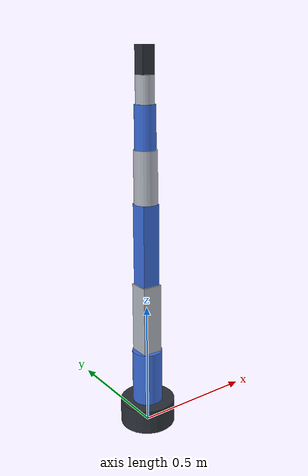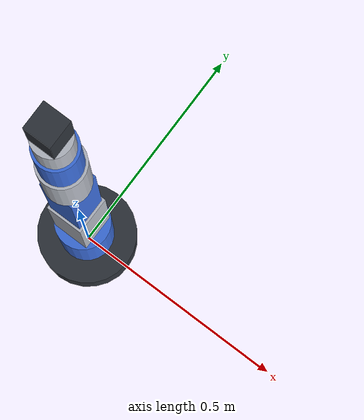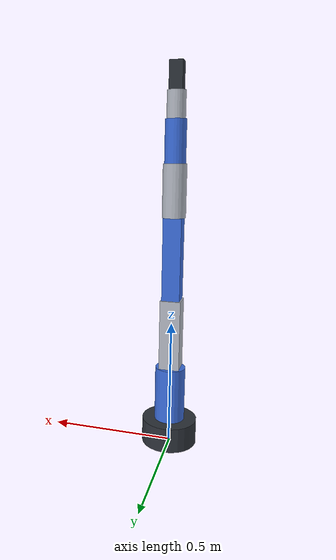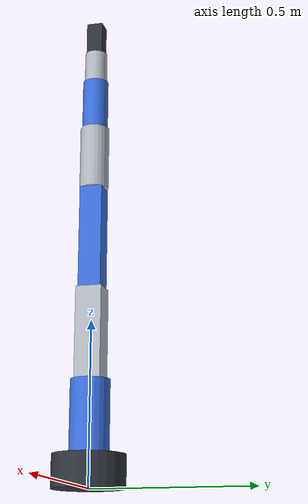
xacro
<?xml version="1.0"?>
<robot xmlns:xacro="http://www.ros.org/wiki/xacro" name="mycobot_pro600">
  <xacro:arg name="use_ros2_control" default="true"/>
  <xacro:arg name="controllers_file" default=""/>
  <xacro:arg name="use_gazebo_meshes" default="false"/>
  <xacro:arg name="fixed_base" default="true"/>

  <xacro:macro name="cylinder_inertia" params="mass radius length">
    <inertial>
      <mass value="${mass}"/>
      <origin xyz="0 0 0" rpy="0 0 0"/>
      <inertia
        ixx="${mass * (3 * radius * radius + length * length) / 12.0}"
        ixy="0.0"
        ixz="0.0"
        iyy="${mass * (3 * radius * radius + length * length) / 12.0}"
        iyz="0.0"
        izz="${0.5 * mass * radius * radius}"/>
    </inertial>
  </xacro:macro>

  <xacro:macro name="box_inertia" params="mass x y z">
    <inertial>
      <mass value="${mass}"/>
      <origin xyz="0 0 0" rpy="0 0 0"/>
      <inertia
        ixx="${mass * (y * y + z * z) / 12.0}"
        ixy="0.0"
        ixz="0.0"
        iyy="${mass * (x * x + z * z) / 12.0}"
        iyz="0.0"
        izz="${mass * (x * x + y * y) / 12.0}"/>
    </inertial>
  </xacro:macro>

  <material name="platform_dark">
    <color rgba="0.18 0.20 0.23 1.0"/>
  </material>
  <material name="platform_blue">
    <color rgba="0.24 0.44 0.88 1.0"/>
  </material>
  <material name="platform_silver">
    <color rgba="0.72 0.74 0.78 1.0"/>
  </material>

  <xacro:if value="$(arg fixed_base)">
    <link name="world"/>
    <joint name="world_to_base" type="fixed">
      <parent link="world"/>
      <child link="base_link"/>
      <origin xyz="0 0 0" rpy="0 0 0"/>
    </joint>
  </xacro:if>

  <link name="base_link">
    <visual>
      <origin xyz="0 0 0.05" rpy="0 0 0"/>
      <geometry>
        <cylinder radius="0.11" length="0.10"/>
      </geometry>
      <material name="platform_dark"/>
    </visual>
    <collision>
      <origin xyz="0 0 0.05" rpy="0 0 0"/>
      <geometry>
        <cylinder radius="0.11" length="0.10"/>
      </geometry>
    </collision>
    <xacro:cylinder_inertia mass="5.0" radius="0.11" length="0.10"/>
  </link>

  <link name="link1">
    <visual>
      <origin xyz="0 0 0.11" rpy="0 0 0"/>
      <geometry>
        <cylinder radius="0.06" length="0.22"/>
      </geometry>
      <material name="platform_blue"/>
    </visual>
    <collision>
      <origin xyz="0 0 0.11" rpy="0 0 0"/>
      <geometry>
        <cylinder radius="0.06" length="0.22"/>
      </geometry>
    </collision>
    <xacro:cylinder_inertia mass="3.2" radius="0.06" length="0.22"/>
  </link>

  <joint name="joint1" type="revolute">
    <parent link="base_link"/>
    <child link="link1"/>
    <origin xyz="0 0 0.10" rpy="0 0 0"/>
    <axis xyz="0 0 1"/>
    <limit lower="-3.14159" upper="3.14159" effort="120" velocity="2.5"/>
  </joint>

  <link name="link2">
    <visual>
      <origin xyz="0 0 0.14" rpy="0 0 0"/>
      <geometry>
        <box size="0.08 0.08 0.28"/>
      </geometry>
      <material name="platform_silver"/>
    </visual>
    <collision>
      <origin xyz="0 0 0.14" rpy="0 0 0"/>
      <geometry>
        <box size="0.08 0.08 0.28"/>
      </geometry>
    </collision>
    <xacro:box_inertia mass="2.4" x="0.08" y="0.08" z="0.28"/>
  </link>

  <joint name="joint2" type="revolute">
    <parent link="link1"/>
    <child link="link2"/>
    <origin xyz="0 0 0.22" rpy="0 0 0"/>
    <axis xyz="0 1 0"/>
    <limit lower="-2.5" upper="2.5" effort="100" velocity="2.5"/>
  </joint>

  <link name="link3">
    <visual>
      <origin xyz="0 0 0.16" rpy="0 0 0"/>
      <geometry>
        <box size="0.07 0.07 0.32"/>
      </geometry>
      <material name="platform_blue"/>
    </visual>
    <collision>
      <origin xyz="0 0 0.16" rpy="0 0 0"/>
      <geometry>
        <box size="0.07 0.07 0.32"/>
      </geometry>
    </collision>
    <xacro:box_inertia mass="1.9" x="0.07" y="0.07" z="0.32"/>
  </link>

  <joint name="joint3" type="revolute">
    <parent link="link2"/>
    <child link="link3"/>
    <origin xyz="0 0 0.28" rpy="0 0 0"/>
    <axis xyz="0 1 0"/>
    <limit lower="-2.8" upper="2.8" effort="90" velocity="2.5"/>
  </joint>

  <link name="link4">
    <visual>
      <origin xyz="0 0 0.10" rpy="0 0 0"/>
      <geometry>
        <cylinder radius="0.045" length="0.20"/>
      </geometry>
      <material name="platform_silver"/>
    </visual>
    <collision>
      <origin xyz="0 0 0.10" rpy="0 0 0"/>
      <geometry>
        <cylinder radius="0.045" length="0.20"/>
      </geometry>
    </collision>
    <xacro:cylinder_inertia mass="1.2" radius="0.045" length="0.20"/>
  </link>

  <joint name="joint4" type="revolute">
    <parent link="link3"/>
    <child link="link4"/>
    <origin xyz="0 0 0.32" rpy="0 0 0"/>
    <axis xyz="1 0 0"/>
    <limit lower="-3.14159" upper="3.14159" effort="45" velocity="3.0"/>
  </joint>

  <link name="link5">
    <visual>
      <origin xyz="0 0 0.08" rpy="0 0 0"/>
      <geometry>
        <cylinder radius="0.04" length="0.16"/>
      </geometry>
      <material name="platform_blue"/>
    </visual>
    <collision>
      <origin xyz="0 0 0.08" rpy="0 0 0"/>
      <geometry>
        <cylinder radius="0.04" length="0.16"/>
      </geometry>
    </collision>
    <xacro:cylinder_inertia mass="0.9" radius="0.04" length="0.16"/>
  </link>

  <joint name="joint5" type="revolute">
    <parent link="link4"/>
    <child link="link5"/>
    <origin xyz="0 0 0.20" rpy="0 0 0"/>
    <axis xyz="0 1 0"/>
    <limit lower="-2.2" upper="2.2" effort="30" velocity="3.0"/>
  </joint>

  <link name="link6">
    <visual>
      <origin xyz="0 0 0.05" rpy="0 0 0"/>
      <geometry>
        <cylinder radius="0.035" length="0.10"/>
      </geometry>
      <material name="platform_silver"/>
    </visual>
    <collision>
      <origin xyz="0 0 0.05" rpy="0 0 0"/>
      <geometry>
        <cylinder radius="0.035" length="0.10"/>
      </geometry>
    </collision>
    <xacro:cylinder_inertia mass="0.5" radius="0.035" length="0.10"/>
  </link>

  <joint name="joint6" type="revolute">
    <parent link="link5"/>
    <child link="link6"/>
    <origin xyz="0 0 0.16" rpy="0 0 0"/>
    <axis xyz="1 0 0"/>
    <limit lower="-3.14159" upper="3.14159" effort="20" velocity="3.5"/>
  </joint>

  <link name="tool0">
    <visual>
      <origin xyz="0 0 0.05" rpy="0 0 0"/>
      <geometry>
        <box size="0.05 0.05 0.10"/>
      </geometry>
      <material name="platform_dark"/>
    </visual>
    <collision>
      <origin xyz="0 0 0.05" rpy="0 0 0"/>
      <geometry>
        <box size="0.05 0.05 0.10"/>
      </geometry>
    </collision>
    <xacro:box_inertia mass="0.25" x="0.05" y="0.05" z="0.10"/>
  </link>

  <joint name="tool0_fixed_joint" type="fixed">
    <parent link="link6"/>
    <child link="tool0"/>
    <origin xyz="0 0 0.10" rpy="0 0 0"/>
  </joint>

  <xacro:if value="$(arg use_ros2_control)">
    <ros2_control name="GazeboSimSystem" type="system">
      <hardware>
        <plugin>gz_ros2_control/GazeboSimSystem</plugin>
      </hardware>
      <joint name="joint1">
        <command_interface name="position"/>
        <state_interface name="position"/>
        <state_interface name="velocity"/>
      </joint>
      <joint name="joint2">
        <command_interface name="position"/>
        <state_interface name="position"/>
        <state_interface name="velocity"/>
      </joint>
      <joint name="joint3">
        <command_interface name="position"/>
        <state_interface name="position"/>
        <state_interface name="velocity"/>
      </joint>
      <joint name="joint4">
        <command_interface name="position"/>
        <state_interface name="position"/>
        <state_interface name="velocity"/>
      </joint>
      <joint name="joint5">
        <command_interface name="position"/>
        <state_interface name="position"/>
        <state_interface name="velocity"/>
      </joint>
      <joint name="joint6">
        <command_interface name="position"/>
        <state_interface name="position"/>
        <state_interface name="velocity"/>
      </joint>
    </ros2_control>

    <gazebo>
      <plugin filename="libgz_ros2_control-system.so" name="gz_ros2_control::GazeboSimROS2ControlPlugin">
        <parameters>$(arg controllers_file)</parameters>
      </plugin>
    </gazebo>
  </xacro:if>
</robot>
